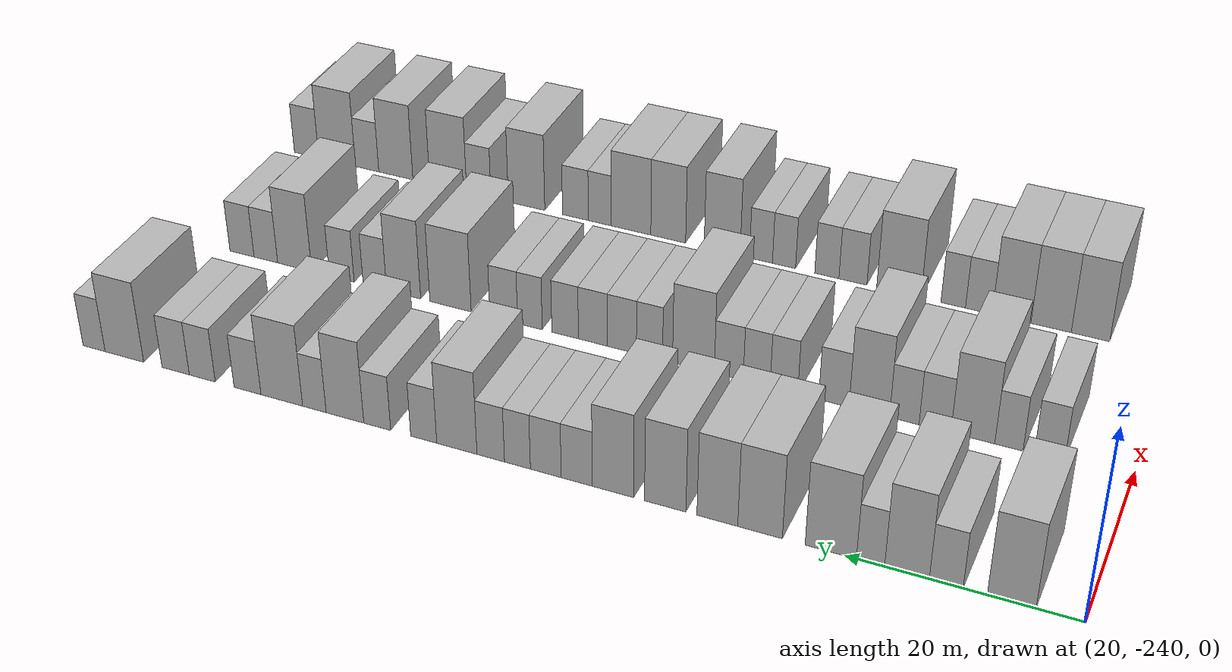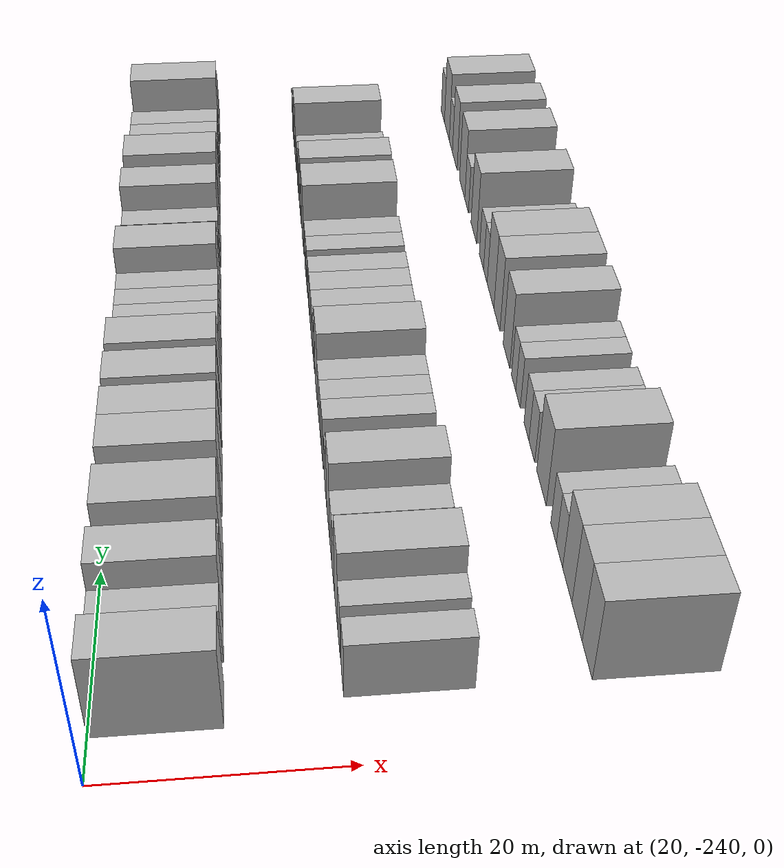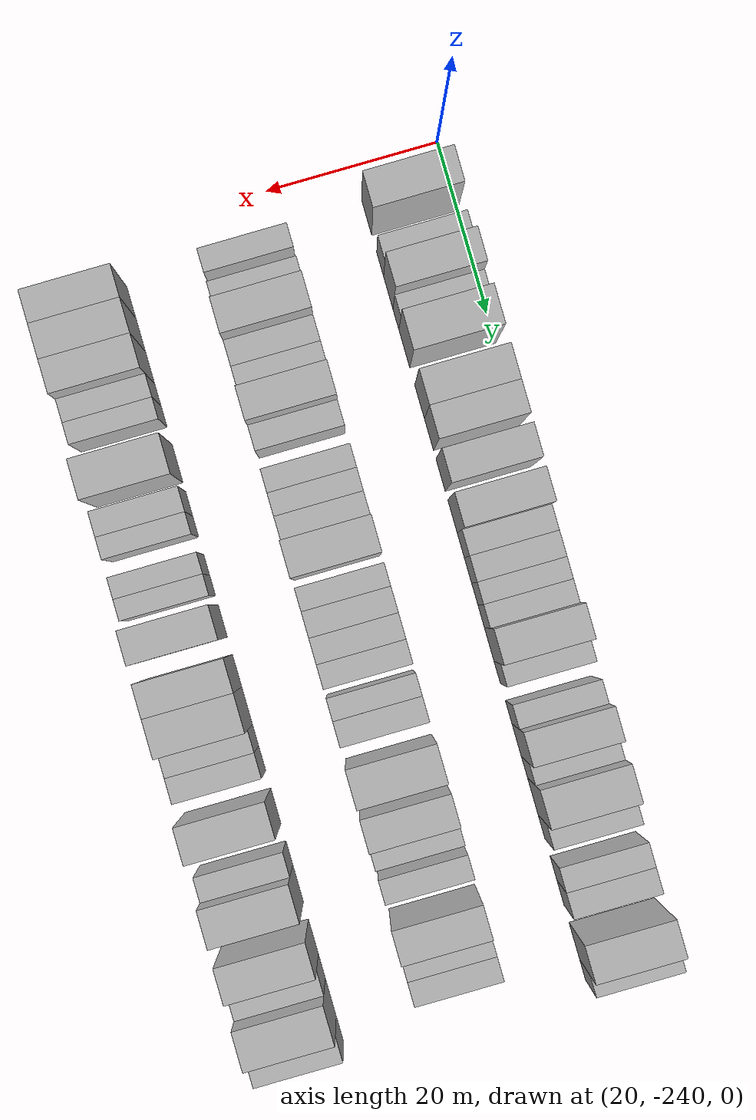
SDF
<sdf version="1.6">
 <world name="default">
  <model name="building_1">
   <static>1</static>
   <pose>25.0000 -233.9981 0 0.000000 0.000000 0.000000</pose>
   <link name="link">
    <pose>0 0 4.50 0 0 0</pose>
    <collision name="collision"><geometry><box><size>10.0000 4.0038 9.0000</size></box></geometry></collision>
    <visual name="visual">
     <cast_shadows>0</cast_shadows>
     <geometry><box><size>10.0000 4.0038 9.0000</size></box></geometry>
     <material>
      <script>
       <uri>model://HANNAS_wall/materials/scripts</uri>
       <uri>model://HANNAS_wall/materials/textures</uri>
       <name>vrc/HANNAS_wall</name>
      </script>
     </material>
    </visual>
   </link>
  </model>
  <model name="building_2">
   <static>1</static>
   <pose>25.0000 -228.5838 0 0.000000 0.000000 0.000000</pose>
   <link name="link">
    <pose>0 0 3.00 0 0 0</pose>
    <collision name="collision"><geometry><box><size>10.0000 2.8249 6.0000</size></box></geometry></collision>
    <visual name="visual">
     <cast_shadows>0</cast_shadows>
     <geometry><box><size>10.0000 2.8249 6.0000</size></box></geometry>
     <material>
      <script>
       <uri>model://HANNAS_wall/materials/scripts</uri>
       <uri>model://HANNAS_wall/materials/textures</uri>
       <name>vrc/HANNAS_wall</name>
      </script>
     </material>
    </visual>
   </link>
  </model>
  <model name="building_3">
   <static>1</static>
   <pose>25.0000 -225.2748 0 0.000000 0.000000 0.000000</pose>
   <link name="link">
    <pose>0 0 4.50 0 0 0</pose>
    <collision name="collision"><geometry><box><size>10.0000 3.7931 9.0000</size></box></geometry></collision>
    <visual name="visual">
     <cast_shadows>0</cast_shadows>
     <geometry><box><size>10.0000 3.7931 9.0000</size></box></geometry>
     <material>
      <script>
       <uri>model://HANNAS_wall/materials/scripts</uri>
       <uri>model://HANNAS_wall/materials/textures</uri>
       <name>vrc/HANNAS_wall</name>
      </script>
     </material>
    </visual>
   </link>
  </model>
  <model name="building_4">
   <static>1</static>
   <pose>25.0000 -222.1700 0 0.000000 0.000000 0.000000</pose>
   <link name="link">
    <pose>0 0 3.00 0 0 0</pose>
    <collision name="collision"><geometry><box><size>10.0000 2.4163 6.0000</size></box></geometry></collision>
    <visual name="visual">
     <cast_shadows>0</cast_shadows>
     <geometry><box><size>10.0000 2.4163 6.0000</size></box></geometry>
     <material>
      <script>
       <uri>model://HANNAS_wall/materials/scripts</uri>
       <uri>model://HANNAS_wall/materials/textures</uri>
       <name>vrc/HANNAS_wall</name>
      </script>
     </material>
    </visual>
   </link>
  </model>
  <model name="building_5">
   <static>1</static>
   <pose>25.0000 -218.7425 0 0.000000 0.000000 0.000000</pose>
   <link name="link">
    <pose>0 0 4.50 0 0 0</pose>
    <collision name="collision"><geometry><box><size>10.0000 4.4388 9.0000</size></box></geometry></collision>
    <visual name="visual">
     <cast_shadows>0</cast_shadows>
     <geometry><box><size>10.0000 4.4388 9.0000</size></box></geometry>
     <material>
      <script>
       <uri>model://HANNAS_wall/materials/scripts</uri>
       <uri>model://HANNAS_wall/materials/textures</uri>
       <name>vrc/HANNAS_wall</name>
      </script>
     </material>
    </visual>
   </link>
  </model>
  <model name="building_6">
   <static>1</static>
   <pose>25.0000 -212.5421 0 0.000000 0.000000 0.000000</pose>
   <link name="link">
    <pose>0 0 4.50 0 0 0</pose>
    <collision name="collision"><geometry><box><size>10.0000 3.9620 9.0000</size></box></geometry></collision>
    <visual name="visual">
     <cast_shadows>0</cast_shadows>
     <geometry><box><size>10.0000 3.9620 9.0000</size></box></geometry>
     <material>
      <script>
       <uri>model://HANNAS_wall/materials/scripts</uri>
       <uri>model://HANNAS_wall/materials/textures</uri>
       <name>vrc/HANNAS_wall</name>
      </script>
     </material>
    </visual>
   </link>
  </model>
  <model name="building_7">
   <static>1</static>
   <pose>25.0000 -208.7248 0 0.000000 0.000000 0.000000</pose>
   <link name="link">
    <pose>0 0 4.50 0 0 0</pose>
    <collision name="collision"><geometry><box><size>10.0000 3.6725 9.0000</size></box></geometry></collision>
    <visual name="visual">
     <cast_shadows>0</cast_shadows>
     <geometry><box><size>10.0000 3.6725 9.0000</size></box></geometry>
     <material>
      <script>
       <uri>model://HANNAS_wall/materials/scripts</uri>
       <uri>model://HANNAS_wall/materials/textures</uri>
       <name>vrc/HANNAS_wall</name>
      </script>
     </material>
    </visual>
   </link>
  </model>
  <model name="building_8">
   <static>1</static>
   <pose>25.0000 -203.9958 0 0.000000 0.000000 0.000000</pose>
   <link name="link">
    <pose>0 0 4.50 0 0 0</pose>
    <collision name="collision"><geometry><box><size>10.0000 3.7854 9.0000</size></box></geometry></collision>
    <visual name="visual">
     <cast_shadows>0</cast_shadows>
     <geometry><box><size>10.0000 3.7854 9.0000</size></box></geometry>
     <material>
      <script>
       <uri>model://HANNAS_wall/materials/scripts</uri>
       <uri>model://HANNAS_wall/materials/textures</uri>
       <name>vrc/HANNAS_wall</name>
      </script>
     </material>
    </visual>
   </link>
  </model>
  <model name="building_9">
   <static>1</static>
   <pose>25.0000 -199.1760 0 0.000000 0.000000 0.000000</pose>
   <link name="link">
    <pose>0 0 4.50 0 0 0</pose>
    <collision name="collision"><geometry><box><size>10.0000 3.8543 9.0000</size></box></geometry></collision>
    <visual name="visual">
     <cast_shadows>0</cast_shadows>
     <geometry><box><size>10.0000 3.8543 9.0000</size></box></geometry>
     <material>
      <script>
       <uri>model://HANNAS_wall/materials/scripts</uri>
       <uri>model://HANNAS_wall/materials/textures</uri>
       <name>vrc/HANNAS_wall</name>
      </script>
     </material>
    </visual>
   </link>
  </model>
  <model name="building_10">
   <static>1</static>
   <pose>25.0000 -195.7851 0 0.000000 0.000000 0.000000</pose>
   <link name="link">
    <pose>0 0 3.00 0 0 0</pose>
    <collision name="collision"><geometry><box><size>10.0000 2.9275 6.0000</size></box></geometry></collision>
    <visual name="visual">
     <cast_shadows>0</cast_shadows>
     <geometry><box><size>10.0000 2.9275 6.0000</size></box></geometry>
     <material>
      <script>
       <uri>model://HANNAS_wall/materials/scripts</uri>
       <uri>model://HANNAS_wall/materials/textures</uri>
       <name>vrc/HANNAS_wall</name>
      </script>
     </material>
    </visual>
   </link>
  </model>
  <model name="building_11">
   <static>1</static>
   <pose>25.0000 -192.8540 0 0.000000 0.000000 0.000000</pose>
   <link name="link">
    <pose>0 0 3.00 0 0 0</pose>
    <collision name="collision"><geometry><box><size>10.0000 2.9347 6.0000</size></box></geometry></collision>
    <visual name="visual">
     <cast_shadows>0</cast_shadows>
     <geometry><box><size>10.0000 2.9347 6.0000</size></box></geometry>
     <material>
      <script>
       <uri>model://HANNAS_wall/materials/scripts</uri>
       <uri>model://HANNAS_wall/materials/textures</uri>
       <name>vrc/HANNAS_wall</name>
      </script>
     </material>
    </visual>
   </link>
  </model>
  <model name="building_12">
   <static>1</static>
   <pose>25.0000 -190.1426 0 0.000000 0.000000 0.000000</pose>
   <link name="link">
    <pose>0 0 3.00 0 0 0</pose>
    <collision name="collision"><geometry><box><size>10.0000 2.4881 6.0000</size></box></geometry></collision>
    <visual name="visual">
     <cast_shadows>0</cast_shadows>
     <geometry><box><size>10.0000 2.4881 6.0000</size></box></geometry>
     <material>
      <script>
       <uri>model://HANNAS_wall/materials/scripts</uri>
       <uri>model://HANNAS_wall/materials/textures</uri>
       <name>vrc/HANNAS_wall</name>
      </script>
     </material>
    </visual>
   </link>
  </model>
  <model name="building_13">
   <static>1</static>
   <pose>25.0000 -187.5617 0 0.000000 0.000000 0.000000</pose>
   <link name="link">
    <pose>0 0 3.00 0 0 0</pose>
    <collision name="collision"><geometry><box><size>10.0000 2.6737 6.0000</size></box></geometry></collision>
    <visual name="visual">
     <cast_shadows>0</cast_shadows>
     <geometry><box><size>10.0000 2.6737 6.0000</size></box></geometry>
     <material>
      <script>
       <uri>model://HANNAS_wall/materials/scripts</uri>
       <uri>model://HANNAS_wall/materials/textures</uri>
       <name>vrc/HANNAS_wall</name>
      </script>
     </material>
    </visual>
   </link>
  </model>
  <model name="building_14">
   <static>1</static>
   <pose>25.0000 -184.2528 0 0.000000 0.000000 0.000000</pose>
   <link name="link">
    <pose>0 0 4.50 0 0 0</pose>
    <collision name="collision"><geometry><box><size>10.0000 3.9441 9.0000</size></box></geometry></collision>
    <visual name="visual">
     <cast_shadows>0</cast_shadows>
     <geometry><box><size>10.0000 3.9441 9.0000</size></box></geometry>
     <material>
      <script>
       <uri>model://HANNAS_wall/materials/scripts</uri>
       <uri>model://HANNAS_wall/materials/textures</uri>
       <name>vrc/HANNAS_wall</name>
      </script>
     </material>
    </visual>
   </link>
  </model>
  <model name="building_15">
   <static>1</static>
   <pose>25.0000 -180.9864 0 0.000000 0.000000 0.000000</pose>
   <link name="link">
    <pose>0 0 3.00 0 0 0</pose>
    <collision name="collision"><geometry><box><size>10.0000 2.5888 6.0000</size></box></geometry></collision>
    <visual name="visual">
     <cast_shadows>0</cast_shadows>
     <geometry><box><size>10.0000 2.5888 6.0000</size></box></geometry>
     <material>
      <script>
       <uri>model://HANNAS_wall/materials/scripts</uri>
       <uri>model://HANNAS_wall/materials/textures</uri>
       <name>vrc/HANNAS_wall</name>
      </script>
     </material>
    </visual>
   </link>
  </model>
  <model name="building_16">
   <static>1</static>
   <pose>25.0000 -176.3354 0 0.000000 0.000000 0.000000</pose>
   <link name="link">
    <pose>0 0 3.00 0 0 0</pose>
    <collision name="collision"><geometry><box><size>10.0000 2.7133 6.0000</size></box></geometry></collision>
    <visual name="visual">
     <cast_shadows>0</cast_shadows>
     <geometry><box><size>10.0000 2.7133 6.0000</size></box></geometry>
     <material>
      <script>
       <uri>model://HANNAS_wall/materials/scripts</uri>
       <uri>model://HANNAS_wall/materials/textures</uri>
       <name>vrc/HANNAS_wall</name>
      </script>
     </material>
    </visual>
   </link>
  </model>
  <model name="building_17">
   <static>1</static>
   <pose>25.0000 -173.0598 0 0.000000 0.000000 0.000000</pose>
   <link name="link">
    <pose>0 0 4.50 0 0 0</pose>
    <collision name="collision"><geometry><box><size>10.0000 3.8377 9.0000</size></box></geometry></collision>
    <visual name="visual">
     <cast_shadows>0</cast_shadows>
     <geometry><box><size>10.0000 3.8377 9.0000</size></box></geometry>
     <material>
      <script>
       <uri>model://HANNAS_wall/materials/scripts</uri>
       <uri>model://HANNAS_wall/materials/textures</uri>
       <name>vrc/HANNAS_wall</name>
      </script>
     </material>
    </visual>
   </link>
  </model>
  <model name="building_18">
   <static>1</static>
   <pose>25.0000 -169.9268 0 0.000000 0.000000 0.000000</pose>
   <link name="link">
    <pose>0 0 3.00 0 0 0</pose>
    <collision name="collision"><geometry><box><size>10.0000 2.4284 6.0000</size></box></geometry></collision>
    <visual name="visual">
     <cast_shadows>0</cast_shadows>
     <geometry><box><size>10.0000 2.4284 6.0000</size></box></geometry>
     <material>
      <script>
       <uri>model://HANNAS_wall/materials/scripts</uri>
       <uri>model://HANNAS_wall/materials/textures</uri>
       <name>vrc/HANNAS_wall</name>
      </script>
     </material>
    </visual>
   </link>
  </model>
  <model name="building_19">
   <static>1</static>
   <pose>25.0000 -166.5386 0 0.000000 0.000000 0.000000</pose>
   <link name="link">
    <pose>0 0 4.50 0 0 0</pose>
    <collision name="collision"><geometry><box><size>10.0000 4.3480 9.0000</size></box></geometry></collision>
    <visual name="visual">
     <cast_shadows>0</cast_shadows>
     <geometry><box><size>10.0000 4.3480 9.0000</size></box></geometry>
     <material>
      <script>
       <uri>model://HANNAS_wall/materials/scripts</uri>
       <uri>model://HANNAS_wall/materials/textures</uri>
       <name>vrc/HANNAS_wall</name>
      </script>
     </material>
    </visual>
   </link>
  </model>
  <model name="building_20">
   <static>1</static>
   <pose>25.0000 -162.9481 0 0.000000 0.000000 0.000000</pose>
   <link name="link">
    <pose>0 0 3.00 0 0 0</pose>
    <collision name="collision"><geometry><box><size>10.0000 2.8331 6.0000</size></box></geometry></collision>
    <visual name="visual">
     <cast_shadows>0</cast_shadows>
     <geometry><box><size>10.0000 2.8331 6.0000</size></box></geometry>
     <material>
      <script>
       <uri>model://HANNAS_wall/materials/scripts</uri>
       <uri>model://HANNAS_wall/materials/textures</uri>
       <name>vrc/HANNAS_wall</name>
      </script>
     </material>
    </visual>
   </link>
  </model>
  <model name="building_21">
   <static>1</static>
   <pose>25.0000 -158.1404 0 0.000000 0.000000 0.000000</pose>
   <link name="link">
    <pose>0 0 3.00 0 0 0</pose>
    <collision name="collision"><geometry><box><size>10.0000 2.7823 6.0000</size></box></geometry></collision>
    <visual name="visual">
     <cast_shadows>0</cast_shadows>
     <geometry><box><size>10.0000 2.7823 6.0000</size></box></geometry>
     <material>
      <script>
       <uri>model://HANNAS_wall/materials/scripts</uri>
       <uri>model://HANNAS_wall/materials/textures</uri>
       <name>vrc/HANNAS_wall</name>
      </script>
     </material>
    </visual>
   </link>
  </model>
  <model name="building_22">
   <static>1</static>
   <pose>25.0000 -155.2684 0 0.000000 0.000000 0.000000</pose>
   <link name="link">
    <pose>0 0 3.00 0 0 0</pose>
    <collision name="collision"><geometry><box><size>10.0000 2.9617 6.0000</size></box></geometry></collision>
    <visual name="visual">
     <cast_shadows>0</cast_shadows>
     <geometry><box><size>10.0000 2.9617 6.0000</size></box></geometry>
     <material>
      <script>
       <uri>model://HANNAS_wall/materials/scripts</uri>
       <uri>model://HANNAS_wall/materials/textures</uri>
       <name>vrc/HANNAS_wall</name>
      </script>
     </material>
    </visual>
   </link>
  </model>
  <model name="building_23">
   <static>1</static>
   <pose>25.0000 -149.6617 0 0.000000 0.000000 0.000000</pose>
   <link name="link">
    <pose>0 0 4.50 0 0 0</pose>
    <collision name="collision"><geometry><box><size>10.0000 4.2517 9.0000</size></box></geometry></collision>
    <visual name="visual">
     <cast_shadows>0</cast_shadows>
     <geometry><box><size>10.0000 4.2517 9.0000</size></box></geometry>
     <material>
      <script>
       <uri>model://HANNAS_wall/materials/scripts</uri>
       <uri>model://HANNAS_wall/materials/textures</uri>
       <name>vrc/HANNAS_wall</name>
      </script>
     </material>
    </visual>
   </link>
  </model>
  <model name="building_24">
   <static>1</static>
   <pose>25.0000 -146.3111 0 0.000000 0.000000 0.000000</pose>
   <link name="link">
    <pose>0 0 3.00 0 0 0</pose>
    <collision name="collision"><geometry><box><size>10.0000 2.4495 6.0000</size></box></geometry></collision>
    <visual name="visual">
     <cast_shadows>0</cast_shadows>
     <geometry><box><size>10.0000 2.4495 6.0000</size></box></geometry>
     <material>
      <script>
       <uri>model://HANNAS_wall/materials/scripts</uri>
       <uri>model://HANNAS_wall/materials/textures</uri>
       <name>vrc/HANNAS_wall</name>
      </script>
     </material>
    </visual>
   </link>
  </model>
  <model name="building_116">
   <static>1</static>
   <pose>44.0000 -232.6577 0 0.000000 0.000000 0.000000</pose>
   <link name="link">
    <pose>0 0 3.00 0 0 0</pose>
    <collision name="collision"><geometry><box><size>10.0000 2.6845 6.0000</size></box></geometry></collision>
    <visual name="visual">
     <cast_shadows>0</cast_shadows>
     <geometry><box><size>10.0000 2.6845 6.0000</size></box></geometry>
     <material>
      <script>
       <uri>model://HANNAS_wall/materials/scripts</uri>
       <uri>model://HANNAS_wall/materials/textures</uri>
       <name>vrc/HANNAS_wall</name>
      </script>
     </material>
    </visual>
   </link>
  </model>
  <model name="building_117">
   <static>1</static>
   <pose>44.0000 -229.0439 0 0.000000 0.000000 0.000000</pose>
   <link name="link">
    <pose>0 0 3.00 0 0 0</pose>
    <collision name="collision"><geometry><box><size>10.0000 2.5432 6.0000</size></box></geometry></collision>
    <visual name="visual">
     <cast_shadows>0</cast_shadows>
     <geometry><box><size>10.0000 2.5432 6.0000</size></box></geometry>
     <material>
      <script>
       <uri>model://HANNAS_wall/materials/scripts</uri>
       <uri>model://HANNAS_wall/materials/textures</uri>
       <name>vrc/HANNAS_wall</name>
      </script>
     </material>
    </visual>
   </link>
  </model>
  <model name="building_118">
   <static>1</static>
   <pose>44.0000 -225.7795 0 0.000000 0.000000 0.000000</pose>
   <link name="link">
    <pose>0 0 4.50 0 0 0</pose>
    <collision name="collision"><geometry><box><size>10.0000 3.9856 9.0000</size></box></geometry></collision>
    <visual name="visual">
     <cast_shadows>0</cast_shadows>
     <geometry><box><size>10.0000 3.9856 9.0000</size></box></geometry>
     <material>
      <script>
       <uri>model://HANNAS_wall/materials/scripts</uri>
       <uri>model://HANNAS_wall/materials/textures</uri>
       <name>vrc/HANNAS_wall</name>
      </script>
     </material>
    </visual>
   </link>
  </model>
  <model name="building_119">
   <static>1</static>
   <pose>44.0000 -222.3233 0 0.000000 0.000000 0.000000</pose>
   <link name="link">
    <pose>0 0 3.00 0 0 0</pose>
    <collision name="collision"><geometry><box><size>10.0000 2.9270 6.0000</size></box></geometry></collision>
    <visual name="visual">
     <cast_shadows>0</cast_shadows>
     <geometry><box><size>10.0000 2.9270 6.0000</size></box></geometry>
     <material>
      <script>
       <uri>model://HANNAS_wall/materials/scripts</uri>
       <uri>model://HANNAS_wall/materials/textures</uri>
       <name>vrc/HANNAS_wall</name>
      </script>
     </material>
    </visual>
   </link>
  </model>
  <model name="building_120">
   <static>1</static>
   <pose>44.0000 -219.4866 0 0.000000 0.000000 0.000000</pose>
   <link name="link">
    <pose>0 0 3.00 0 0 0</pose>
    <collision name="collision"><geometry><box><size>10.0000 2.7464 6.0000</size></box></geometry></collision>
    <visual name="visual">
     <cast_shadows>0</cast_shadows>
     <geometry><box><size>10.0000 2.7464 6.0000</size></box></geometry>
     <material>
      <script>
       <uri>model://HANNAS_wall/materials/scripts</uri>
       <uri>model://HANNAS_wall/materials/textures</uri>
       <name>vrc/HANNAS_wall</name>
      </script>
     </material>
    </visual>
   </link>
  </model>
  <model name="building_121">
   <static>1</static>
   <pose>44.0000 -216.2165 0 0.000000 0.000000 0.000000</pose>
   <link name="link">
    <pose>0 0 4.50 0 0 0</pose>
    <collision name="collision"><geometry><box><size>10.0000 3.7939 9.0000</size></box></geometry></collision>
    <visual name="visual">
     <cast_shadows>0</cast_shadows>
     <geometry><box><size>10.0000 3.7939 9.0000</size></box></geometry>
     <material>
      <script>
       <uri>model://HANNAS_wall/materials/scripts</uri>
       <uri>model://HANNAS_wall/materials/textures</uri>
       <name>vrc/HANNAS_wall</name>
      </script>
     </material>
    </visual>
   </link>
  </model>
  <model name="building_122">
   <static>1</static>
   <pose>44.0000 -212.8788 0 0.000000 0.000000 0.000000</pose>
   <link name="link">
    <pose>0 0 3.00 0 0 0</pose>
    <collision name="collision"><geometry><box><size>10.0000 2.8815 6.0000</size></box></geometry></collision>
    <visual name="visual">
     <cast_shadows>0</cast_shadows>
     <geometry><box><size>10.0000 2.8815 6.0000</size></box></geometry>
     <material>
      <script>
       <uri>model://HANNAS_wall/materials/scripts</uri>
       <uri>model://HANNAS_wall/materials/textures</uri>
       <name>vrc/HANNAS_wall</name>
      </script>
     </material>
    </visual>
   </link>
  </model>
  <model name="building_123">
   <static>1</static>
   <pose>44.0000 -208.1049 0 0.000000 0.000000 0.000000</pose>
   <link name="link">
    <pose>0 0 3.00 0 0 0</pose>
    <collision name="collision"><geometry><box><size>10.0000 2.6661 6.0000</size></box></geometry></collision>
    <visual name="visual">
     <cast_shadows>0</cast_shadows>
     <geometry><box><size>10.0000 2.6661 6.0000</size></box></geometry>
     <material>
      <script>
       <uri>model://HANNAS_wall/materials/scripts</uri>
       <uri>model://HANNAS_wall/materials/textures</uri>
       <name>vrc/HANNAS_wall</name>
      </script>
     </material>
    </visual>
   </link>
  </model>
  <model name="building_124">
   <static>1</static>
   <pose>44.0000 -205.4646 0 0.000000 0.000000 0.000000</pose>
   <link name="link">
    <pose>0 0 3.00 0 0 0</pose>
    <collision name="collision"><geometry><box><size>10.0000 2.6146 6.0000</size></box></geometry></collision>
    <visual name="visual">
     <cast_shadows>0</cast_shadows>
     <geometry><box><size>10.0000 2.6146 6.0000</size></box></geometry>
     <material>
      <script>
       <uri>model://HANNAS_wall/materials/scripts</uri>
       <uri>model://HANNAS_wall/materials/textures</uri>
       <name>vrc/HANNAS_wall</name>
      </script>
     </material>
    </visual>
   </link>
  </model>
  <model name="building_125">
   <static>1</static>
   <pose>44.0000 -202.7363 0 0.000000 0.000000 0.000000</pose>
   <link name="link">
    <pose>0 0 3.00 0 0 0</pose>
    <collision name="collision"><geometry><box><size>10.0000 2.8420 6.0000</size></box></geometry></collision>
    <visual name="visual">
     <cast_shadows>0</cast_shadows>
     <geometry><box><size>10.0000 2.8420 6.0000</size></box></geometry>
     <material>
      <script>
       <uri>model://HANNAS_wall/materials/scripts</uri>
       <uri>model://HANNAS_wall/materials/textures</uri>
       <name>vrc/HANNAS_wall</name>
      </script>
     </material>
    </visual>
   </link>
  </model>
  <model name="building_126">
   <static>1</static>
   <pose>44.0000 -199.2434 0 0.000000 0.000000 0.000000</pose>
   <link name="link">
    <pose>0 0 4.50 0 0 0</pose>
    <collision name="collision"><geometry><box><size>10.0000 4.1437 9.0000</size></box></geometry></collision>
    <visual name="visual">
     <cast_shadows>0</cast_shadows>
     <geometry><box><size>10.0000 4.1437 9.0000</size></box></geometry>
     <material>
      <script>
       <uri>model://HANNAS_wall/materials/scripts</uri>
       <uri>model://HANNAS_wall/materials/textures</uri>
       <name>vrc/HANNAS_wall</name>
      </script>
     </material>
    </visual>
   </link>
  </model>
  <model name="building_127">
   <static>1</static>
   <pose>44.0000 -194.8538 0 0.000000 0.000000 0.000000</pose>
   <link name="link">
    <pose>0 0 3.00 0 0 0</pose>
    <collision name="collision"><geometry><box><size>10.0000 2.6356 6.0000</size></box></geometry></collision>
    <visual name="visual">
     <cast_shadows>0</cast_shadows>
     <geometry><box><size>10.0000 2.6356 6.0000</size></box></geometry>
     <material>
      <script>
       <uri>model://HANNAS_wall/materials/scripts</uri>
       <uri>model://HANNAS_wall/materials/textures</uri>
       <name>vrc/HANNAS_wall</name>
      </script>
     </material>
    </visual>
   </link>
  </model>
  <model name="building_128">
   <static>1</static>
   <pose>44.0000 -192.0563 0 0.000000 0.000000 0.000000</pose>
   <link name="link">
    <pose>0 0 3.00 0 0 0</pose>
    <collision name="collision"><geometry><box><size>10.0000 2.9593 6.0000</size></box></geometry></collision>
    <visual name="visual">
     <cast_shadows>0</cast_shadows>
     <geometry><box><size>10.0000 2.9593 6.0000</size></box></geometry>
     <material>
      <script>
       <uri>model://HANNAS_wall/materials/scripts</uri>
       <uri>model://HANNAS_wall/materials/textures</uri>
       <name>vrc/HANNAS_wall</name>
      </script>
     </material>
    </visual>
   </link>
  </model>
  <model name="building_129">
   <static>1</static>
   <pose>44.0000 -189.0985 0 0.000000 0.000000 0.000000</pose>
   <link name="link">
    <pose>0 0 3.00 0 0 0</pose>
    <collision name="collision"><geometry><box><size>10.0000 2.9564 6.0000</size></box></geometry></collision>
    <visual name="visual">
     <cast_shadows>0</cast_shadows>
     <geometry><box><size>10.0000 2.9564 6.0000</size></box></geometry>
     <material>
      <script>
       <uri>model://HANNAS_wall/materials/scripts</uri>
       <uri>model://HANNAS_wall/materials/textures</uri>
       <name>vrc/HANNAS_wall</name>
      </script>
     </material>
    </visual>
   </link>
  </model>
  <model name="building_130">
   <static>1</static>
   <pose>44.0000 -186.2433 0 0.000000 0.000000 0.000000</pose>
   <link name="link">
    <pose>0 0 3.00 0 0 0</pose>
    <collision name="collision"><geometry><box><size>10.0000 2.7539 6.0000</size></box></geometry></collision>
    <visual name="visual">
     <cast_shadows>0</cast_shadows>
     <geometry><box><size>10.0000 2.7539 6.0000</size></box></geometry>
     <material>
      <script>
       <uri>model://HANNAS_wall/materials/scripts</uri>
       <uri>model://HANNAS_wall/materials/textures</uri>
       <name>vrc/HANNAS_wall</name>
      </script>
     </material>
    </visual>
   </link>
  </model>
  <model name="building_131">
   <static>1</static>
   <pose>44.0000 -182.5780 0 0.000000 0.000000 0.000000</pose>
   <link name="link">
    <pose>0 0 3.00 0 0 0</pose>
    <collision name="collision"><geometry><box><size>10.0000 2.5768 6.0000</size></box></geometry></collision>
    <visual name="visual">
     <cast_shadows>0</cast_shadows>
     <geometry><box><size>10.0000 2.5768 6.0000</size></box></geometry>
     <material>
      <script>
       <uri>model://HANNAS_wall/materials/scripts</uri>
       <uri>model://HANNAS_wall/materials/textures</uri>
       <name>vrc/HANNAS_wall</name>
      </script>
     </material>
    </visual>
   </link>
  </model>
  <model name="building_132">
   <static>1</static>
   <pose>44.0000 -179.8230 0 0.000000 0.000000 0.000000</pose>
   <link name="link">
    <pose>0 0 3.00 0 0 0</pose>
    <collision name="collision"><geometry><box><size>10.0000 2.9331 6.0000</size></box></geometry></collision>
    <visual name="visual">
     <cast_shadows>0</cast_shadows>
     <geometry><box><size>10.0000 2.9331 6.0000</size></box></geometry>
     <material>
      <script>
       <uri>model://HANNAS_wall/materials/scripts</uri>
       <uri>model://HANNAS_wall/materials/textures</uri>
       <name>vrc/HANNAS_wall</name>
      </script>
     </material>
    </visual>
   </link>
  </model>
  <model name="building_133">
   <static>1</static>
   <pose>44.0000 -174.1336 0 0.000000 0.000000 0.000000</pose>
   <link name="link">
    <pose>0 0 4.50 0 0 0</pose>
    <collision name="collision"><geometry><box><size>10.0000 4.4457 9.0000</size></box></geometry></collision>
    <visual name="visual">
     <cast_shadows>0</cast_shadows>
     <geometry><box><size>10.0000 4.4457 9.0000</size></box></geometry>
     <material>
      <script>
       <uri>model://HANNAS_wall/materials/scripts</uri>
       <uri>model://HANNAS_wall/materials/textures</uri>
       <name>vrc/HANNAS_wall</name>
      </script>
     </material>
    </visual>
   </link>
  </model>
  <model name="building_134">
   <static>1</static>
   <pose>44.0000 -169.0472 0 0.000000 0.000000 0.000000</pose>
   <link name="link">
    <pose>0 0 4.50 0 0 0</pose>
    <collision name="collision"><geometry><box><size>10.0000 3.7271 9.0000</size></box></geometry></collision>
    <visual name="visual">
     <cast_shadows>0</cast_shadows>
     <geometry><box><size>10.0000 3.7271 9.0000</size></box></geometry>
     <material>
      <script>
       <uri>model://HANNAS_wall/materials/scripts</uri>
       <uri>model://HANNAS_wall/materials/textures</uri>
       <name>vrc/HANNAS_wall</name>
      </script>
     </material>
    </visual>
   </link>
  </model>
  <model name="building_135">
   <static>1</static>
   <pose>44.0000 -165.8917 0 0.000000 0.000000 0.000000</pose>
   <link name="link">
    <pose>0 0 3.00 0 0 0</pose>
    <collision name="collision"><geometry><box><size>10.0000 2.5839 6.0000</size></box></geometry></collision>
    <visual name="visual">
     <cast_shadows>0</cast_shadows>
     <geometry><box><size>10.0000 2.5839 6.0000</size></box></geometry>
     <material>
      <script>
       <uri>model://HANNAS_wall/materials/scripts</uri>
       <uri>model://HANNAS_wall/materials/textures</uri>
       <name>vrc/HANNAS_wall</name>
      </script>
     </material>
    </visual>
   </link>
  </model>
  <model name="building_136">
   <static>1</static>
   <pose>44.0000 -162.2147 0 0.000000 0.000000 0.000000</pose>
   <link name="link">
    <pose>0 0 3.00 0 0 0</pose>
    <collision name="collision"><geometry><box><size>10.0000 2.7700 6.0000</size></box></geometry></collision>
    <visual name="visual">
     <cast_shadows>0</cast_shadows>
     <geometry><box><size>10.0000 2.7700 6.0000</size></box></geometry>
     <material>
      <script>
       <uri>model://HANNAS_wall/materials/scripts</uri>
       <uri>model://HANNAS_wall/materials/textures</uri>
       <name>vrc/HANNAS_wall</name>
      </script>
     </material>
    </visual>
   </link>
  </model>
  <model name="building_137">
   <static>1</static>
   <pose>44.0000 -156.8972 0 0.000000 0.000000 0.000000</pose>
   <link name="link">
    <pose>0 0 4.50 0 0 0</pose>
    <collision name="collision"><geometry><box><size>10.0000 3.8651 9.0000</size></box></geometry></collision>
    <visual name="visual">
     <cast_shadows>0</cast_shadows>
     <geometry><box><size>10.0000 3.8651 9.0000</size></box></geometry>
     <material>
      <script>
       <uri>model://HANNAS_wall/materials/scripts</uri>
       <uri>model://HANNAS_wall/materials/textures</uri>
       <name>vrc/HANNAS_wall</name>
      </script>
     </material>
    </visual>
   </link>
  </model>
  <model name="building_138">
   <static>1</static>
   <pose>44.0000 -153.6091 0 0.000000 0.000000 0.000000</pose>
   <link name="link">
    <pose>0 0 3.00 0 0 0</pose>
    <collision name="collision"><geometry><box><size>10.0000 2.7112 6.0000</size></box></geometry></collision>
    <visual name="visual">
     <cast_shadows>0</cast_shadows>
     <geometry><box><size>10.0000 2.7112 6.0000</size></box></geometry>
     <material>
      <script>
       <uri>model://HANNAS_wall/materials/scripts</uri>
       <uri>model://HANNAS_wall/materials/textures</uri>
       <name>vrc/HANNAS_wall</name>
      </script>
     </material>
    </visual>
   </link>
  </model>
  <model name="building_139">
   <static>1</static>
   <pose>44.0000 -150.8597 0 0.000000 0.000000 0.000000</pose>
   <link name="link">
    <pose>0 0 3.00 0 0 0</pose>
    <collision name="collision"><geometry><box><size>10.0000 2.7875 6.0000</size></box></geometry></collision>
    <visual name="visual">
     <cast_shadows>0</cast_shadows>
     <geometry><box><size>10.0000 2.7875 6.0000</size></box></geometry>
     <material>
      <script>
       <uri>model://HANNAS_wall/materials/scripts</uri>
       <uri>model://HANNAS_wall/materials/textures</uri>
       <name>vrc/HANNAS_wall</name>
      </script>
     </material>
    </visual>
   </link>
  </model>
  <model name="building_238">
   <static>1</static>
   <pose>63.0000 -232.1690 0 0.000000 0.000000 0.000000</pose>
   <link name="link">
    <pose>0 0 4.50 0 0 0</pose>
    <collision name="collision"><geometry><box><size>10.0000 3.6619 9.0000</size></box></geometry></collision>
    <visual name="visual">
     <cast_shadows>0</cast_shadows>
     <geometry><box><size>10.0000 3.6619 9.0000</size></box></geometry>
     <material>
      <script>
       <uri>model://HANNAS_wall/materials/scripts</uri>
       <uri>model://HANNAS_wall/materials/textures</uri>
       <name>vrc/HANNAS_wall</name>
      </script>
     </material>
    </visual>
   </link>
  </model>
  <model name="building_239">
   <static>1</static>
   <pose>63.0000 -228.3938 0 0.000000 0.000000 0.000000</pose>
   <link name="link">
    <pose>0 0 4.50 0 0 0</pose>
    <collision name="collision"><geometry><box><size>10.0000 3.8885 9.0000</size></box></geometry></collision>
    <visual name="visual">
     <cast_shadows>0</cast_shadows>
     <geometry><box><size>10.0000 3.8885 9.0000</size></box></geometry>
     <material>
      <script>
       <uri>model://HANNAS_wall/materials/scripts</uri>
       <uri>model://HANNAS_wall/materials/textures</uri>
       <name>vrc/HANNAS_wall</name>
      </script>
     </material>
    </visual>
   </link>
  </model>
  <model name="building_240">
   <static>1</static>
   <pose>63.0000 -224.5651 0 0.000000 0.000000 0.000000</pose>
   <link name="link">
    <pose>0 0 4.50 0 0 0</pose>
    <collision name="collision"><geometry><box><size>10.0000 3.7689 9.0000</size></box></geometry></collision>
    <visual name="visual">
     <cast_shadows>0</cast_shadows>
     <geometry><box><size>10.0000 3.7689 9.0000</size></box></geometry>
     <material>
      <script>
       <uri>model://HANNAS_wall/materials/scripts</uri>
       <uri>model://HANNAS_wall/materials/textures</uri>
       <name>vrc/HANNAS_wall</name>
      </script>
     </material>
    </visual>
   </link>
  </model>
  <model name="building_241">
   <static>1</static>
   <pose>63.0000 -221.3643 0 0.000000 0.000000 0.000000</pose>
   <link name="link">
    <pose>0 0 3.00 0 0 0</pose>
    <collision name="collision"><geometry><box><size>10.0000 2.6328 6.0000</size></box></geometry></collision>
    <visual name="visual">
     <cast_shadows>0</cast_shadows>
     <geometry><box><size>10.0000 2.6328 6.0000</size></box></geometry>
     <material>
      <script>
       <uri>model://HANNAS_wall/materials/scripts</uri>
       <uri>model://HANNAS_wall/materials/textures</uri>
       <name>vrc/HANNAS_wall</name>
      </script>
     </material>
    </visual>
   </link>
  </model>
  <model name="building_242">
   <static>1</static>
   <pose>63.0000 -218.8279 0 0.000000 0.000000 0.000000</pose>
   <link name="link">
    <pose>0 0 3.00 0 0 0</pose>
    <collision name="collision"><geometry><box><size>10.0000 2.4401 6.0000</size></box></geometry></collision>
    <visual name="visual">
     <cast_shadows>0</cast_shadows>
     <geometry><box><size>10.0000 2.4401 6.0000</size></box></geometry>
     <material>
      <script>
       <uri>model://HANNAS_wall/materials/scripts</uri>
       <uri>model://HANNAS_wall/materials/textures</uri>
       <name>vrc/HANNAS_wall</name>
      </script>
     </material>
    </visual>
   </link>
  </model>
  <model name="building_243">
   <static>1</static>
   <pose>63.0000 -213.3756 0 0.000000 0.000000 0.000000</pose>
   <link name="link">
    <pose>0 0 4.50 0 0 0</pose>
    <collision name="collision"><geometry><box><size>10.0000 4.4646 9.0000</size></box></geometry></collision>
    <visual name="visual">
     <cast_shadows>0</cast_shadows>
     <geometry><box><size>10.0000 4.4646 9.0000</size></box></geometry>
     <material>
      <script>
       <uri>model://HANNAS_wall/materials/scripts</uri>
       <uri>model://HANNAS_wall/materials/textures</uri>
       <name>vrc/HANNAS_wall</name>
      </script>
     </material>
    </visual>
   </link>
  </model>
  <model name="building_244">
   <static>1</static>
   <pose>63.0000 -208.7082 0 0.000000 0.000000 0.000000</pose>
   <link name="link">
    <pose>0 0 3.00 0 0 0</pose>
    <collision name="collision"><geometry><box><size>10.0000 2.8702 6.0000</size></box></geometry></collision>
    <visual name="visual">
     <cast_shadows>0</cast_shadows>
     <geometry><box><size>10.0000 2.8702 6.0000</size></box></geometry>
     <material>
      <script>
       <uri>model://HANNAS_wall/materials/scripts</uri>
       <uri>model://HANNAS_wall/materials/textures</uri>
       <name>vrc/HANNAS_wall</name>
      </script>
     </material>
    </visual>
   </link>
  </model>
  <model name="building_245">
   <static>1</static>
   <pose>63.0000 -206.0258 0 0.000000 0.000000 0.000000</pose>
   <link name="link">
    <pose>0 0 3.00 0 0 0</pose>
    <collision name="collision"><geometry><box><size>10.0000 2.4947 6.0000</size></box></geometry></collision>
    <visual name="visual">
     <cast_shadows>0</cast_shadows>
     <geometry><box><size>10.0000 2.4947 6.0000</size></box></geometry>
     <material>
      <script>
       <uri>model://HANNAS_wall/materials/scripts</uri>
       <uri>model://HANNAS_wall/materials/textures</uri>
       <name>vrc/HANNAS_wall</name>
      </script>
     </material>
    </visual>
   </link>
  </model>
  <model name="building_246">
   <static>1</static>
   <pose>63.0000 -201.5666 0 0.000000 0.000000 0.000000</pose>
   <link name="link">
    <pose>0 0 3.00 0 0 0</pose>
    <collision name="collision"><geometry><box><size>10.0000 2.4237 6.0000</size></box></geometry></collision>
    <visual name="visual">
     <cast_shadows>0</cast_shadows>
     <geometry><box><size>10.0000 2.4237 6.0000</size></box></geometry>
     <material>
      <script>
       <uri>model://HANNAS_wall/materials/scripts</uri>
       <uri>model://HANNAS_wall/materials/textures</uri>
       <name>vrc/HANNAS_wall</name>
      </script>
     </material>
    </visual>
   </link>
  </model>
  <model name="building_247">
   <static>1</static>
   <pose>63.0000 -199.1446 0 0.000000 0.000000 0.000000</pose>
   <link name="link">
    <pose>0 0 3.00 0 0 0</pose>
    <collision name="collision"><geometry><box><size>10.0000 2.4203 6.0000</size></box></geometry></collision>
    <visual name="visual">
     <cast_shadows>0</cast_shadows>
     <geometry><box><size>10.0000 2.4203 6.0000</size></box></geometry>
     <material>
      <script>
       <uri>model://HANNAS_wall/materials/scripts</uri>
       <uri>model://HANNAS_wall/materials/textures</uri>
       <name>vrc/HANNAS_wall</name>
      </script>
     </material>
    </visual>
   </link>
  </model>
  <model name="building_248">
   <static>1</static>
   <pose>63.0000 -195.0152 0 0.000000 0.000000 0.000000</pose>
   <link name="link">
    <pose>0 0 4.50 0 0 0</pose>
    <collision name="collision"><geometry><box><size>10.0000 3.8385 9.0000</size></box></geometry></collision>
    <visual name="visual">
     <cast_shadows>0</cast_shadows>
     <geometry><box><size>10.0000 3.8385 9.0000</size></box></geometry>
     <material>
      <script>
       <uri>model://HANNAS_wall/materials/scripts</uri>
       <uri>model://HANNAS_wall/materials/textures</uri>
       <name>vrc/HANNAS_wall</name>
      </script>
     </material>
    </visual>
   </link>
  </model>
  <model name="building_249">
   <static>1</static>
   <pose>63.0000 -189.2017 0 0.000000 0.000000 0.000000</pose>
   <link name="link">
    <pose>0 0 4.50 0 0 0</pose>
    <collision name="collision"><geometry><box><size>10.0000 3.7884 9.0000</size></box></geometry></collision>
    <visual name="visual">
     <cast_shadows>0</cast_shadows>
     <geometry><box><size>10.0000 3.7884 9.0000</size></box></geometry>
     <material>
      <script>
       <uri>model://HANNAS_wall/materials/scripts</uri>
       <uri>model://HANNAS_wall/materials/textures</uri>
       <name>vrc/HANNAS_wall</name>
      </script>
     </material>
    </visual>
   </link>
  </model>
  <model name="building_250">
   <static>1</static>
   <pose>63.0000 -185.1105 0 0.000000 0.000000 0.000000</pose>
   <link name="link">
    <pose>0 0 4.50 0 0 0</pose>
    <collision name="collision"><geometry><box><size>10.0000 4.3940 9.0000</size></box></geometry></collision>
    <visual name="visual">
     <cast_shadows>0</cast_shadows>
     <geometry><box><size>10.0000 4.3940 9.0000</size></box></geometry>
     <material>
      <script>
       <uri>model://HANNAS_wall/materials/scripts</uri>
       <uri>model://HANNAS_wall/materials/textures</uri>
       <name>vrc/HANNAS_wall</name>
      </script>
     </material>
    </visual>
   </link>
  </model>
  <model name="building_251">
   <static>1</static>
   <pose>63.0000 -181.6586 0 0.000000 0.000000 0.000000</pose>
   <link name="link">
    <pose>0 0 3.00 0 0 0</pose>
    <collision name="collision"><geometry><box><size>10.0000 2.5098 6.0000</size></box></geometry></collision>
    <visual name="visual">
     <cast_shadows>0</cast_shadows>
     <geometry><box><size>10.0000 2.5098 6.0000</size></box></geometry>
     <material>
      <script>
       <uri>model://HANNAS_wall/materials/scripts</uri>
       <uri>model://HANNAS_wall/materials/textures</uri>
       <name>vrc/HANNAS_wall</name>
      </script>
     </material>
    </visual>
   </link>
  </model>
  <model name="building_252">
   <static>1</static>
   <pose>63.0000 -178.9561 0 0.000000 0.000000 0.000000</pose>
   <link name="link">
    <pose>0 0 3.00 0 0 0</pose>
    <collision name="collision"><geometry><box><size>10.0000 2.8952 6.0000</size></box></geometry></collision>
    <visual name="visual">
     <cast_shadows>0</cast_shadows>
     <geometry><box><size>10.0000 2.8952 6.0000</size></box></geometry>
     <material>
      <script>
       <uri>model://HANNAS_wall/materials/scripts</uri>
       <uri>model://HANNAS_wall/materials/textures</uri>
       <name>vrc/HANNAS_wall</name>
      </script>
     </material>
    </visual>
   </link>
  </model>
  <model name="building_253">
   <static>1</static>
   <pose>63.0000 -173.4297 0 0.000000 0.000000 0.000000</pose>
   <link name="link">
    <pose>0 0 4.50 0 0 0</pose>
    <collision name="collision"><geometry><box><size>10.0000 4.1577 9.0000</size></box></geometry></collision>
    <visual name="visual">
     <cast_shadows>0</cast_shadows>
     <geometry><box><size>10.0000 4.1577 9.0000</size></box></geometry>
     <material>
      <script>
       <uri>model://HANNAS_wall/materials/scripts</uri>
       <uri>model://HANNAS_wall/materials/textures</uri>
       <name>vrc/HANNAS_wall</name>
      </script>
     </material>
    </visual>
   </link>
  </model>
  <model name="building_254">
   <static>1</static>
   <pose>63.0000 -167.9422 0 0.000000 0.000000 0.000000</pose>
   <link name="link">
    <pose>0 0 3.00 0 0 0</pose>
    <collision name="collision"><geometry><box><size>10.0000 2.8173 6.0000</size></box></geometry></collision>
    <visual name="visual">
     <cast_shadows>0</cast_shadows>
     <geometry><box><size>10.0000 2.8173 6.0000</size></box></geometry>
     <material>
      <script>
       <uri>model://HANNAS_wall/materials/scripts</uri>
       <uri>model://HANNAS_wall/materials/textures</uri>
       <name>vrc/HANNAS_wall</name>
      </script>
     </material>
    </visual>
   </link>
  </model>
  <model name="building_255">
   <static>1</static>
   <pose>63.0000 -164.3739 0 0.000000 0.000000 0.000000</pose>
   <link name="link">
    <pose>0 0 4.50 0 0 0</pose>
    <collision name="collision"><geometry><box><size>10.0000 4.3193 9.0000</size></box></geometry></collision>
    <visual name="visual">
     <cast_shadows>0</cast_shadows>
     <geometry><box><size>10.0000 4.3193 9.0000</size></box></geometry>
     <material>
      <script>
       <uri>model://HANNAS_wall/materials/scripts</uri>
       <uri>model://HANNAS_wall/materials/textures</uri>
       <name>vrc/HANNAS_wall</name>
      </script>
     </material>
    </visual>
   </link>
  </model>
  <model name="building_256">
   <static>1</static>
   <pose>63.0000 -158.1822 0 0.000000 0.000000 0.000000</pose>
   <link name="link">
    <pose>0 0 4.50 0 0 0</pose>
    <collision name="collision"><geometry><box><size>10.0000 4.0641 9.0000</size></box></geometry></collision>
    <visual name="visual">
     <cast_shadows>0</cast_shadows>
     <geometry><box><size>10.0000 4.0641 9.0000</size></box></geometry>
     <material>
      <script>
       <uri>model://HANNAS_wall/materials/scripts</uri>
       <uri>model://HANNAS_wall/materials/textures</uri>
       <name>vrc/HANNAS_wall</name>
      </script>
     </material>
    </visual>
   </link>
  </model>
  <model name="building_257">
   <static>1</static>
   <pose>63.0000 -154.7475 0 0.000000 0.000000 0.000000</pose>
   <link name="link">
    <pose>0 0 3.00 0 0 0</pose>
    <collision name="collision"><geometry><box><size>10.0000 2.8052 6.0000</size></box></geometry></collision>
    <visual name="visual">
     <cast_shadows>0</cast_shadows>
     <geometry><box><size>10.0000 2.8052 6.0000</size></box></geometry>
     <material>
      <script>
       <uri>model://HANNAS_wall/materials/scripts</uri>
       <uri>model://HANNAS_wall/materials/textures</uri>
       <name>vrc/HANNAS_wall</name>
      </script>
     </material>
    </visual>
   </link>
  </model>
  <model name="building_258">
   <static>1</static>
   <pose>63.0000 -151.1075 0 0.000000 0.000000 0.000000</pose>
   <link name="link">
    <pose>0 0 4.50 0 0 0</pose>
    <collision name="collision"><geometry><box><size>10.0000 4.4748 9.0000</size></box></geometry></collision>
    <visual name="visual">
     <cast_shadows>0</cast_shadows>
     <geometry><box><size>10.0000 4.4748 9.0000</size></box></geometry>
     <material>
      <script>
       <uri>model://HANNAS_wall/materials/scripts</uri>
       <uri>model://HANNAS_wall/materials/textures</uri>
       <name>vrc/HANNAS_wall</name>
      </script>
     </material>
    </visual>
   </link>
  </model>
  <model name="building_259">
   <static>1</static>
   <pose>63.0000 -147.3782 0 0.000000 0.000000 0.000000</pose>
   <link name="link">
    <pose>0 0 3.00 0 0 0</pose>
    <collision name="collision"><geometry><box><size>10.0000 2.9839 6.0000</size></box></geometry></collision>
    <visual name="visual">
     <cast_shadows>0</cast_shadows>
     <geometry><box><size>10.0000 2.9839 6.0000</size></box></geometry>
     <material>
      <script>
       <uri>model://HANNAS_wall/materials/scripts</uri>
       <uri>model://HANNAS_wall/materials/textures</uri>
       <name>vrc/HANNAS_wall</name>
      </script>
     </material>
    </visual>
   </link>
  </model>
 </world>
</sdf>
